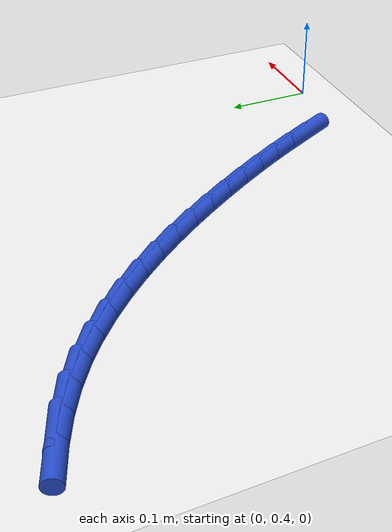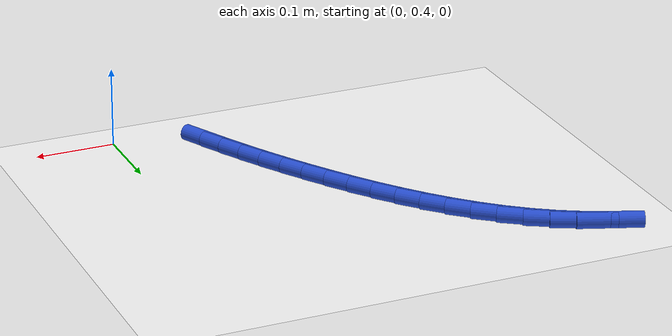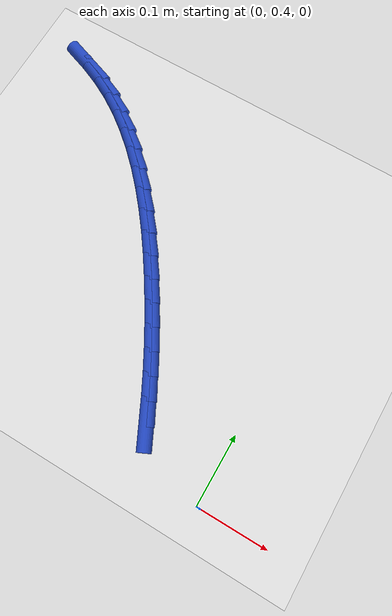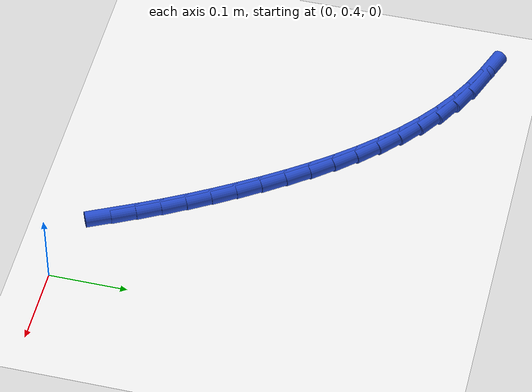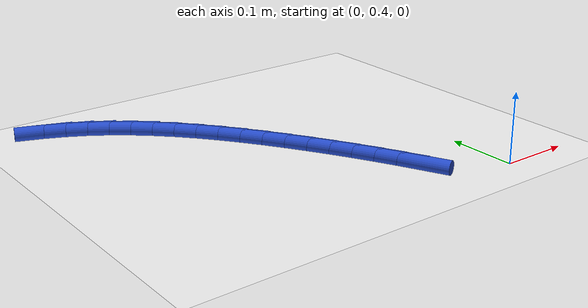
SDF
<sdf version="1.6">
 <world name="default">
  <model name="ground_plane">
   <static>1</static>
   <link name="link">
    <collision name="collision">
     <geometry><plane><normal>0 0 1</normal><size>100 100</size></plane></geometry>
     <surface><friction><ode><mu>100</mu><mu2>50</mu2></ode></friction></surface>
    </collision>
    <visual name="visual">
     <cast_shadows>0</cast_shadows>
     <geometry><plane><normal>0 0 1</normal><size>100 100</size></plane></geometry>
     <material>
      <script><uri>file://media/materials/scripts/gazebo.material</uri><name>Gazebo/WhiteGlow</name></script>
     </material>
    </visual>
   </link>
  </model>
  <model name="line">
   <link name="link_15">
    <pose>-0.10633510217832819 0.4571636962388792 0.01 0 1.57 -1.1206812737849448</pose>
    <collision name="collision">
     <geometry><cylinder><radius>0.01</radius><length>0.08</length></cylinder></geometry>
    </collision>
    <visual name="visual">
     <material>
      <script><name>Gazebo/Blue</name><uri>file://media/materials/scripts/gazebo.material</uri></script>
     </material>
     <geometry><cylinder><radius>0.01</radius><length>0.08</length></cylinder></geometry>
    </visual>
   </link>
   <link name="link_16">
    <pose>-0.12007366006164631 0.4855963202913651 0.01 0 1.57 -1.096309419617392</pose>
    <collision name="collision">
     <geometry><cylinder><radius>0.01</radius><length>0.08</length></cylinder></geometry>
    </collision>
    <visual name="visual">
     <material>
      <script><name>Gazebo/Blue</name><uri>file://media/materials/scripts/gazebo.material</uri></script>
     </material>
     <geometry><cylinder><radius>0.01</radius><length>0.08</length></cylinder></geometry>
    </visual>
   </link>
   <link name="link_17">
    <pose>-0.1345685251007164 0.5138171187916004 0.01 0 1.57 -1.0727857141332735</pose>
    <collision name="collision">
     <geometry><cylinder><radius>0.01</radius><length>0.08</length></cylinder></geometry>
    </collision>
    <visual name="visual">
     <material>
      <script><name>Gazebo/Blue</name><uri>file://media/materials/scripts/gazebo.material</uri></script>
     </material>
     <geometry><cylinder><radius>0.01</radius><length>0.08</length></cylinder></geometry>
    </visual>
   </link>
   <link name="link_18">
    <pose>-0.14980680171710006 0.5418429695586797 0.01 0 1.57 -1.050141672897541</pose>
    <collision name="collision">
     <geometry><cylinder><radius>0.01</radius><length>0.08</length></cylinder></geometry>
    </collision>
    <visual name="visual">
     <material>
      <script><name>Gazebo/Blue</name><uri>file://media/materials/scripts/gazebo.material</uri></script>
     </material>
     <geometry><cylinder><radius>0.01</radius><length>0.08</length></cylinder></geometry>
    </visual>
   </link>
   <link name="link_19">
    <pose>-0.16577559433235917 0.5696907504116987 0.01 0 1.57 -1.0284016866831533</pose>
    <collision name="collision">
     <geometry><cylinder><radius>0.01</radius><length>0.08</length></cylinder></geometry>
    </collision>
    <visual name="visual">
     <material>
      <script><name>Gazebo/Blue</name><uri>file://media/materials/scripts/gazebo.material</uri></script>
     </material>
     <geometry><cylinder><radius>0.01</radius><length>0.08</length></cylinder></geometry>
    </visual>
   </link>
   <link name="link_20">
    <pose>-0.18246200736805523 0.5973773391697513 0.01 0 1.57 -1.0071248750660453</pose>
    <collision name="collision">
     <geometry><cylinder><radius>0.01</radius><length>0.08</length></cylinder></geometry>
    </collision>
    <visual name="visual">
     <material>
      <script><name>Gazebo/Blue</name><uri>file://media/materials/scripts/gazebo.material</uri></script>
     </material>
     <geometry><cylinder><radius>0.01</radius><length>0.08</length></cylinder></geometry>
    </visual>
   </link>
   <link name="link_21">
    <pose>-0.19985814635557805 0.624899568883812 0.01 0 1.57 -0.9828931528680305</pose>
    <collision name="collision">
     <geometry><cylinder><radius>0.01</radius><length>0.08</length></cylinder></geometry>
    </collision>
    <visual name="visual">
     <material>
      <script><name>Gazebo/Blue</name><uri>file://media/materials/scripts/gazebo.material</uri></script>
     </material>
     <geometry><cylinder><radius>0.01</radius><length>0.08</length></cylinder></geometry>
    </visual>
   </link>
   <link name="link_22">
    <pose>-0.21799276981472274 0.6521073650825647 0.01 0 1.57 -0.9539676432649176</pose>
    <collision name="collision">
     <geometry><cylinder><radius>0.01</radius><length>0.08</length></cylinder></geometry>
    </collision>
    <visual name="visual">
     <material>
      <script><name>Gazebo/Blue</name><uri>file://media/materials/scripts/gazebo.material</uri></script>
     </material>
     <geometry><cylinder><radius>0.01</radius><length>0.08</length></cylinder></geometry>
    </visual>
   </link>
   <link name="link_23">
    <pose>-0.23691094436011548 0.6787852894073502 0.01 0 1.57 -0.9199902012766192</pose>
    <collision name="collision">
     <geometry><cylinder><radius>0.01</radius><length>0.08</length></cylinder></geometry>
    </collision>
    <visual name="visual">
     <material>
      <script><name>Gazebo/Blue</name><uri>file://media/materials/scripts/gazebo.material</uri></script>
     </material>
     <geometry><cylinder><radius>0.01</radius><length>0.08</length></cylinder></geometry>
    </visual>
   </link>
   <link name="link_24">
    <pose>-0.2566578109968819 0.7047176053376286 0.01 0 1.57 -0.8805282683018618</pose>
    <collision name="collision">
     <geometry><cylinder><radius>0.01</radius><length>0.08</length></cylinder></geometry>
    </collision>
    <visual name="visual">
     <material>
      <script><name>Gazebo/Blue</name><uri>file://media/materials/scripts/gazebo.material</uri></script>
     </material>
     <geometry><cylinder><radius>0.01</radius><length>0.08</length></cylinder></geometry>
    </visual>
   </link>
   <link name="link_25">
    <pose>-0.27727851073014775 0.7296885763528607 0.01 0 1.57 -0.8350823358551457</pose>
    <collision name="collision">
     <geometry><cylinder><radius>0.01</radius><length>0.08</length></cylinder></geometry>
    </collision>
    <visual name="visual">
     <material>
      <script><name>Gazebo/Blue</name><uri>file://media/materials/scripts/gazebo.material</uri></script>
     </material>
     <geometry><cylinder><radius>0.01</radius><length>0.08</length></cylinder></geometry>
    </visual>
   </link>
   <link name="link_26">
    <pose>-0.2988181845650385 0.7534824659325065 0.01 0 1.57 -0.7831107241831605</pose>
    <collision name="collision">
     <geometry><cylinder><radius>0.01</radius><length>0.08</length></cylinder></geometry>
    </collision>
    <visual name="visual">
     <material>
      <script><name>Gazebo/Blue</name><uri>file://media/materials/scripts/gazebo.material</uri></script>
     </material>
     <geometry><cylinder><radius>0.01</radius><length>0.08</length></cylinder></geometry>
    </visual>
   </link>
   <link name="link_27">
    <pose>-0.32132197350667996 0.775883537556027 0.01 0 1.57 -0.724071406500299</pose>
    <collision name="collision">
     <geometry><cylinder><radius>0.01</radius><length>0.08</length></cylinder></geometry>
    </collision>
    <visual name="visual">
     <material>
      <script><name>Gazebo/Blue</name><uri>file://media/materials/scripts/gazebo.material</uri></script>
     </material>
     <geometry><cylinder><radius>0.01</radius><length>0.08</length></cylinder></geometry>
    </visual>
   </link>
   <link name="link_28">
    <pose>-0.3448350185601977 0.7966760547028827 0.01 0 1.57 -0.6574881831857523</pose>
    <collision name="collision">
     <geometry><cylinder><radius>0.01</radius><length>0.08</length></cylinder></geometry>
    </collision>
    <visual name="visual">
     <material>
      <script><name>Gazebo/Blue</name><uri>file://media/materials/scripts/gazebo.material</uri></script>
     </material>
     <geometry><cylinder><radius>0.01</radius><length>0.08</length></cylinder></geometry>
    </visual>
   </link>
   <link name="link_29">
    <pose>-0.3694024607307172 0.8156442808525334 0.01 0 1.57 -0.5830470435300353</pose>
    <collision name="collision">
     <geometry><cylinder><radius>0.01</radius><length>0.08</length></cylinder></geometry>
    </collision>
    <visual name="visual">
     <material>
      <script><name>Gazebo/Blue</name><uri>file://media/materials/scripts/gazebo.material</uri></script>
     </material>
     <geometry><cylinder><radius>0.01</radius><length>0.08</length></cylinder></geometry>
    </visual>
   </link>
   <link name="link_30">
    <pose>-0.3950694410233643 0.83257247948444 0.01 0 1.57 -0.5008786834999343</pose>
    <collision name="collision">
     <geometry><cylinder><radius>0.01</radius><length>0.08</length></cylinder></geometry>
    </collision>
    <visual name="visual">
     <material>
      <script><name>Gazebo/Blue</name><uri>file://media/materials/scripts/gazebo.material</uri></script>
     </material>
     <geometry><cylinder><radius>0.01</radius><length>0.08</length></cylinder></geometry>
    </visual>
   </link>
   <link name="link_31">
    <pose>-0.4218796081622203 0.8472495435917111 0.01 0 1.57 -0.4199276455290666</pose>
    <collision name="collision">
     <geometry><cylinder><radius>0.01</radius><length>0.08</length></cylinder></geometry>
    </collision>
    <visual name="visual">
     <material>
      <script><name>Gazebo/Blue</name><uri>file://media/materials/scripts/gazebo.material</uri></script>
     </material>
     <geometry><cylinder><radius>0.01</radius><length>0.08</length></cylinder></geometry>
    </visual>
   </link>
   <link name="link_32">
    <pose>-0.4497961777112475 0.8597138945079991 0.01 0 1.57 -0.3537949848907438</pose>
    <collision name="collision">
     <geometry><cylinder><radius>0.01</radius><length>0.08</length></cylinder></geometry>
    </collision>
    <visual name="visual">
     <material>
      <script><name>Gazebo/Blue</name><uri>file://media/materials/scripts/gazebo.material</uri></script>
     </material>
     <geometry><cylinder><radius>0.01</radius><length>0.08</length></cylinder></geometry>
    </visual>
   </link>
  </model>
 </world>
</sdf>
